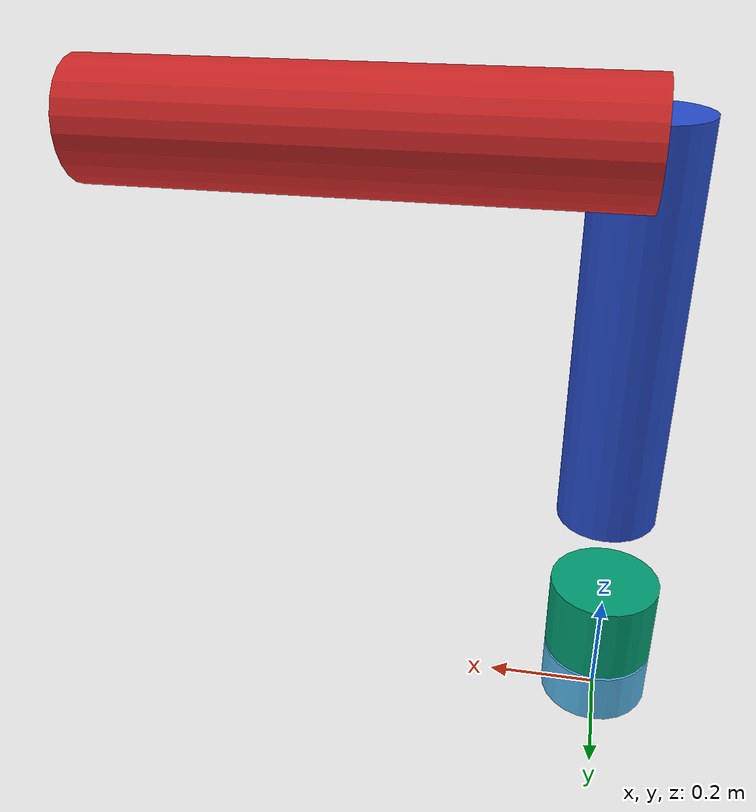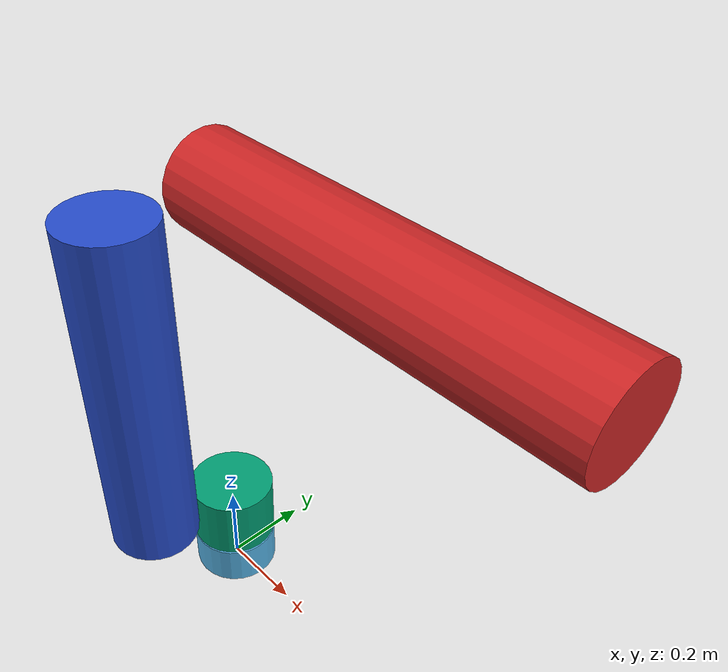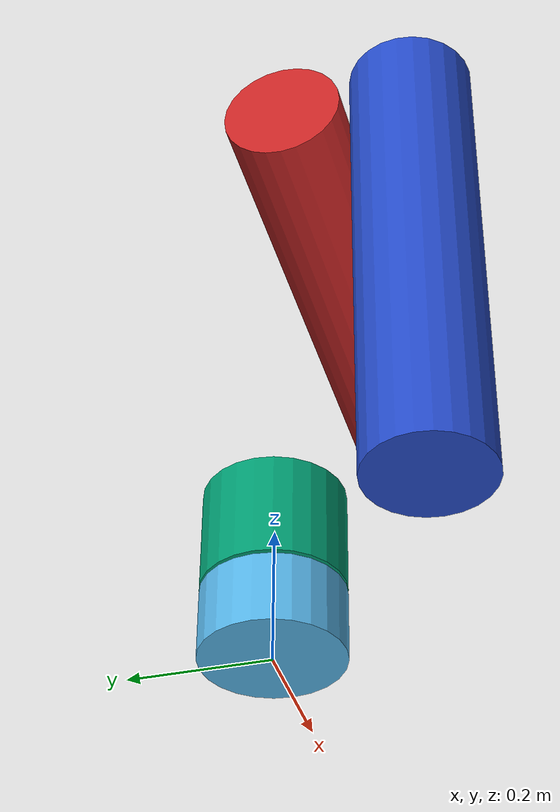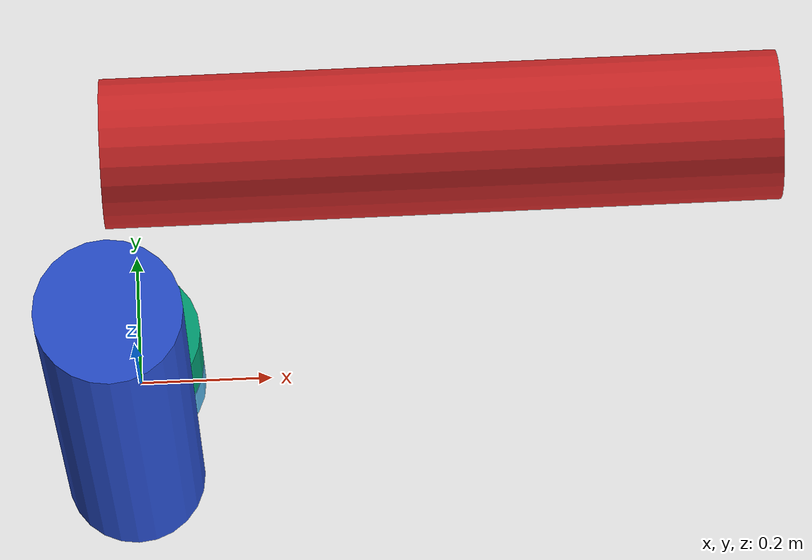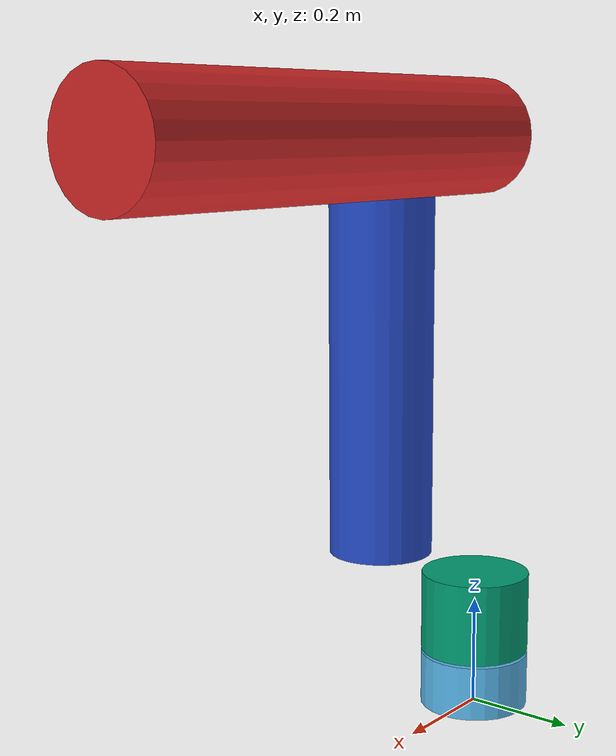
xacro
<?xml version="1.0" encoding="utf-8"?>
<robot name="arm" xmlns:xacro="http://www.ros.org/wiki/xacro">

  <!--parameters for gazebo properties-->
  <xacro:property name="PI" value="3.1415926535897931"/>

  <xacro:property name="l0" value="0.1"/>
  <xacro:property name="l1" value="0.15"/>
  <xacro:property name="l2" value="0.8"/>
  <xacro:property name="l3" value="0.9"/>
  <xacro:property name="r" value="0.1"/>

  <material name="mblue">
    <color rgba="0.1 0.1 0.8 1"/>
  </material>
  <material name="mred">
    <color rgba="0.8 0.1 0.1 1"/>
  </material>
  <material name="morange">
    <color rgba="1 0.5 0.1 1"/>
  </material>

  <xacro:macro name="cylinder_inertia" params="m l r">
    <inertia
        ixx="${m/12.0 * (l*l + 3*r*r)}" ixy="0.0" ixz="0.0"
        iyy="${m/12.0 * (l*l + 3*r*r)}" iyz="0.0"
        izz="${m/2.0 * (r*r)}"/>
  </xacro:macro>

  <xacro:macro name="linkcylinder" params="m l r">
    <visual>
      <origin rpy="0 0 0" xyz="0 0 ${0.5*l}"/>
      <geometry>
        <cylinder length="${l}" radius="${r}"/>
      </geometry>
    </visual>
    <collision>
      <origin rpy="0 0 0" xyz="0 0 ${0.5*l}"/>
      <geometry>
        <cylinder length="${l}" radius="${r}"/>
      </geometry>
    </collision>
    <inertial>
      <origin rpy="0 0 0" xyz="0 0 ${0.5*l}"/>
      <mass value="${m}"/>
      <xacro:cylinder_inertia r="${r}" l="${l}" m="${m}"/>
    </inertial>
  </xacro:macro>

  <link name="world"/>

  <link name="base_link">
    <xacro:linkcylinder m="1" l="${l0}" r="${r}"/>
  </link>

  <link name="link_one">
    <xacro:linkcylinder m="0.7" l="${l1}" r="${r}"/>
  </link>

  <link name="link_two">
    <xacro:linkcylinder m="1" l="${l2}" r="${r}"/>
  </link>

  <link name="link_three">
    <xacro:linkcylinder m="1" l="${l3}" r="${r}"/>
  </link>

  <joint name="world_to_base" type="fixed">
    <parent link="world"/>
    <child link="base_link"/>
    <origin rpy="0 0 0" xyz="0 0 0"/>
  </joint>

  <joint name="shoulder_pan" type="continuous">
    <parent link="base_link"/>
    <child link="link_one"/>
    <origin rpy="0 0 0 " xyz="0 0 ${1.05*l0}"/>
    <axis xyz="0 0 1"/>
  </joint>

  <joint name="shoulder_tilt" type="continuous">
    <parent link="link_one"/>
    <child link="link_two"/>
    <origin rpy="0 0 0 " xyz="0 -${2.2*r} ${l1}"/>
    <axis xyz="0 1 0"/>
  </joint>

  <joint name="elbow" type="continuous">
    <parent link="link_two"/>
    <child link="link_three"/>
    <origin rpy="0 ${0.5*PI} 0 " xyz="0 ${2.2*r} ${l2}"/>
    <axis xyz="0 1 0"/>
  </joint>

  <gazebo reference="link_two">
    <material>Gazebo/Blue</material>
   </gazebo>
   <gazebo reference="link_three">
    <material>Gazebo/Red</material>
   </gazebo>

</robot>
